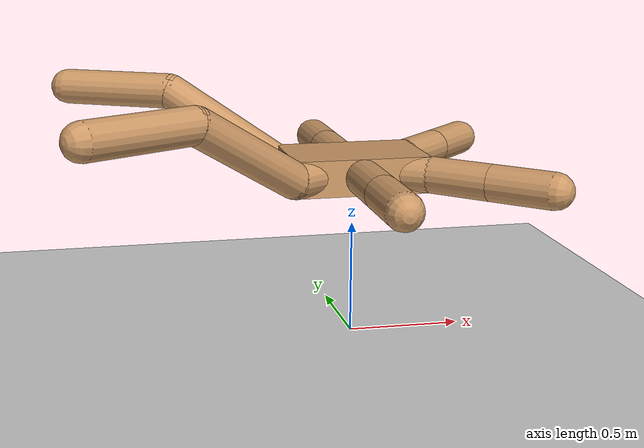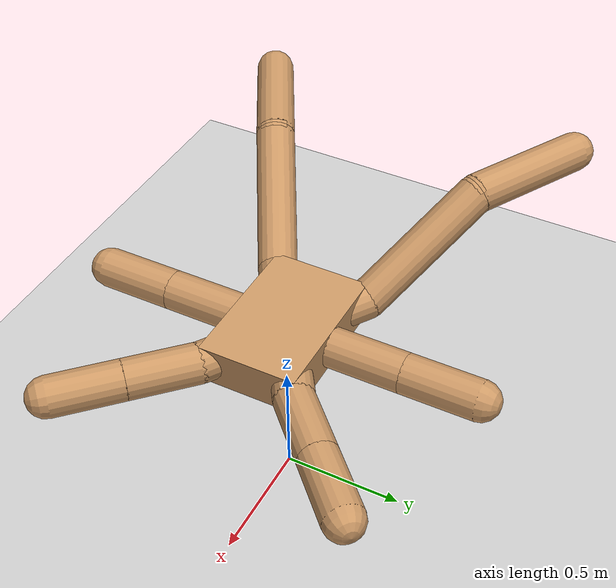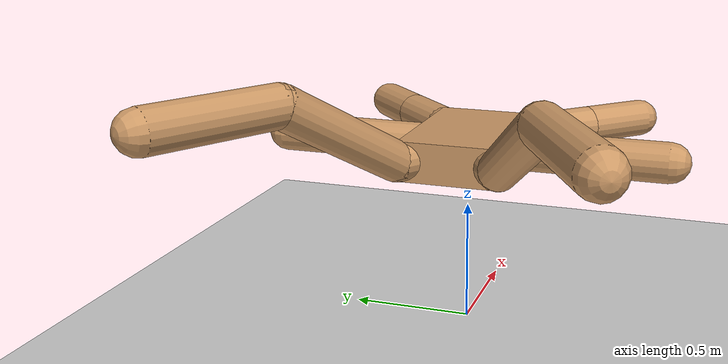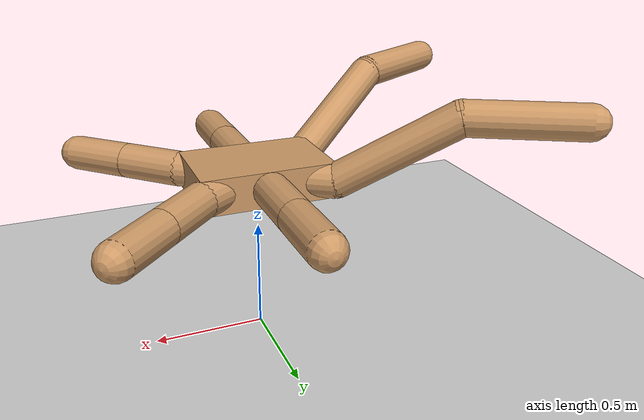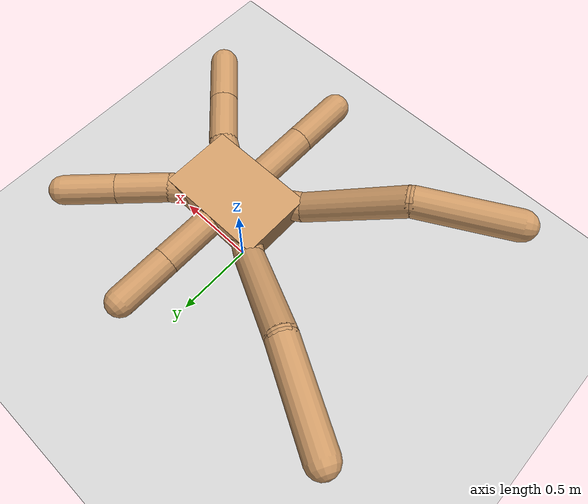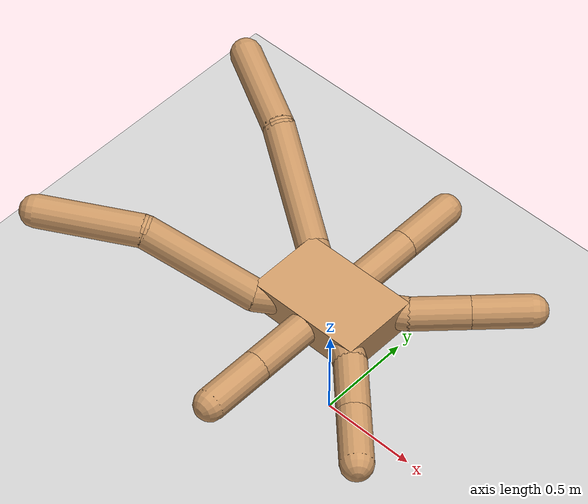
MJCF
<mujoco model="cricket">
  <compiler angle="degree" coordinate="local" inertiafromgeom="true"/>
  <option integrator="RK4" timestep="0.01"/>

  <custom>
    <numeric data="0.0 0.0 0.55 1.0 0.0 0.0 0.0 0.0 1.0 0.0 -1.0 0.0 -1.0 0.0 1.0" name="init_qpos"/>
  </custom>

  <default>
    <joint armature="1" damping="1" limited="true"/>
    <geom conaffinity="0" condim="3" density="5.0" friction="1 0.5 0.5" margin="0.01" rgba="0.8 0.6 0.4 1"/>
  </default>

  <asset>
    <texture builtin="gradient" height="100" rgb1="1 1 1" rgb2="0 0 0" type="skybox" width="100"/>
    <texture builtin="flat" height="1278" mark="cross" markrgb="1 1 1" name="texgeom" random="0.01" rgb1="0.8 0.6 0.4" rgb2="0.8 0.6 0.4" type="cube" width="127"/>
    <texture builtin="checker" height="100" name="texplane" rgb1=".25 .25 .25" rgb2=".3 .3 .3" type="2d" width="100" mark="cross" markrgb=".8 .8 .8"/>
    <material name="MatPlane" reflectance="0.5" shininess="1" specular="1" texrepeat="60 60" texture="texplane"/>
    <material name="geom" texture="texgeom" texuniform="true"/>
  </asset>

  <worldbody>
    <light cutoff="100" diffuse="1 1 1" dir="-0 0 -1.3" directional="true" exponent="1" pos="0 0 1.3" specular=".1 .1 .1"/>
    <geom conaffinity="1" condim="3" material="MatPlane" name="floor" pos="0 0 0" rgba="0.8 0.8 0.8 1" size="40 40 40" type="plane"/>
    <body name="torso" pos="0 0 0.75">
      <camera name="track" mode="trackcom" pos="0 -3 0.3" xyaxes="1 0 0 0 0 1"/>
      <geom name="torso_geom" type="box" pos="0 0 0" size=".3 .2 .08"/>
      <joint armature="0" damping="0" limited="false" margin="0.01" name="root" pos="0 0 0" type="free"/>

      <body name="LF_leg" pos="0 0 0">
        <geom fromto="0.0 0.0 0.0 0.3 0.2 0.0" name="LF_aux_geom" size="0.08" type="capsule"/>
        <body name="LF_aux" pos="0.3 0.2 0">
          <joint axis="1 -1 0" name="LF_CTr" pos="0.0 0.0 0.0" range="-10 10" type="hinge"/>
          <joint axis="0 0 -1" name="LF_hip" pos="0.0 0.0 0.0" range="-10 10" type="hinge"/>
          <geom fromto="0.0 0.0 0.0 0.2 0.2 0.0" name="LF_femur_geom" size="0.08" type="capsule"/>
          <body pos="0.2 0.2 0.0">
            <joint axis="-1 0 0" name="LF_knee" pos="0.0 0.0 0.0" range="70 90" type="hinge"/>
            <geom fromto="0.0 0.0 0.0 0.2 0.2 0.0" name="LF_tibia_geom" size="0.08" type="capsule"/>
          </body>
        </body>
      </body>

      <body name="RF_leg" pos="0 0 0">
        <geom fromto="0.0 0.0 0.0 0.3 -0.2 0.0" name="RF_aux_geom" size="0.08" type="capsule"/>
        <body name="RF_aux" pos="0.3 -0.2 0">
          <joint axis="-1 -1 0" name="RF_CTr" pos="0.0 0.0 0.0" range="-10 10" type="hinge"/>
          <joint axis="0 0 1" name="RF_hip" pos="0.0 0.0 0.0" range="-10 10" type="hinge"/>
          <geom fromto="0.0 0.0 0.0 0.2 -0.2 0.0" name="RF_femur_geom" size="0.08" type="capsule"/>
          <body pos="0.2 -0.2 0.0">
            <joint axis="1 0 0" name="RF_knee" pos="0.0 0.0 0.0" range="70 90" type="hinge"/>
            <geom fromto="0.0 0.0 0.0 0.2 -0.2 0.0" name="RF_tibia_geom" size="0.08" type="capsule"/>
          </body>
        </body>
      </body>

      <body name="LM_leg" pos="0 0 0">
        <geom fromto="0.0 0.0 0.0 0.0 0.2 0.0" name="LM_aux_geom" size="0.08" type="capsule"/>
        <body name="LM_aux" pos="0.0 0.2 0">
          <joint axis="1 0 0" name="LM_CTr" pos="0.0 0.0 0.0" range="-10 20" type="hinge"/>
          <joint axis="0 0 1" name="LM_hip" pos="0.0 0.0 0.0" range="-30 30" type="hinge"/>
          <geom fromto="0.0 0.0 0.0 0.0 0.3 0.0" name="LM_femur_geom" size="0.08" type="capsule"/>
          <body pos="0.0 0.3 0.0">
            <joint axis="-1 0 0" name="LM_knee" pos="0.0 0.0 0.0" range="70 80" type="hinge"/>
            <geom fromto="0.0 0.0 0.0 0.0 0.3 0.0" name="LM_tibia_geom" size="0.08" type="capsule"/>
          </body>
        </body>
      </body>

      <body name="RM_leg" pos="0 0 0">
        <geom fromto="0.0 0.0 0.0 0.0 -0.2 0.0" name="RM_aux_geom" size="0.08" type="capsule"/>
        <body name="RM_aux" pos="0.0 -0.2 0">
          <joint axis="-1 0 0" name="RM_CTr" pos="0.0 0.0 0.0" range="-10 20" type="hinge"/>
          <joint axis="0 0 1" name="RM_hip" pos="0.0 0.0 0.0" range="-30 30" type="hinge"/>
          <geom fromto="0.0 0.0 0.0 0.0 -0.3 0.0" name="RM_femur_geom" size="0.08" type="capsule"/>
          <body pos="0.0 -0.3 0.0">
            <joint axis="1 0 0" name="RM_knee" pos="0.0 0.0 0.0" range="70 80" type="hinge"/>
            <geom fromto="0.0 0.0 0.0 0.0 -0.3 0.0" name="RM_tibia_geom" size="0.08" type="capsule"/>
          </body>
        </body>
      </body>

      <body name="LH_leg" pos="0 0 0">
        <geom fromto="0.0 0.0 0.0 -0.3 0.2 0.0" name="LH_aux_geom" size="0.08" type="capsule"/>
        <body name="LH_aux" pos="-0.3 0.2 0">
          <joint axis="3 5 0" name="LH_CTr" pos="0.0 0.0 0.0" range="-10 0" type="hinge"/>
          <joint axis="0 0 1" name="LH_hip" pos="0.0 0.0 0.0" range="0 10" type="hinge"/>
          <geom fromto="0.0 0.0 0.0 -0.45 0.25 0.3" name="LH_femur_geom" size="0.08" type="capsule"/>
          <body pos="-0.45 0.25 0.3">
            <joint axis="-1 0 0" name="LH_knee" pos="0.0 0.0 0.0" range="70 150" type="hinge"/>
            <geom fromto="0.0 0.0 0.0 -0.45 0.25 0.0" name="LH_tibia_geom" size="0.08" type="capsule"/>
          </body>
        </body>
      </body>

      <body name="RH_leg" pos="0 0 0">
        <geom fromto="0.0 0.0 0.0 -0.3 -0.2 0.0" name="RH_aux_geom" size="0.08" type="capsule"/>
        <body name="RH_aux" pos="-0.3 -0.2 0">
          <joint axis="-3 5 0" name="RH_CTr" pos="0.0 0.0 0.0" range="-10 0" type="hinge"/>
          <joint axis="0 0 -1" name="RH_hip" pos="0.0 0.0 0.0" range="0 10" type="hinge"/>
          <geom fromto="0.0 0.0 0.0 -0.45 -0.25 0.3" name="RH_femur_geom" size="0.08" type="capsule"/>
          <body pos="-0.45 -0.25 0.3">
            <joint axis="1 0 0" name="RH_knee" pos="0.0 0.0 0.0" range="70 150" type="hinge"/>
            <geom fromto="0.0 0.0 0.0 -0.45 -0.25 0.0" name="RH_tibia_geom" size="0.08" type="capsule"/>
          </body>
        </body>
      </body>

    </body>
  </worldbody>

  <actuator>
    <motor ctrllimited="true" ctrlrange="-1.0 1.0" joint="LF_hip" gear="150"/>
    <motor ctrllimited="true" ctrlrange="-1.0 1.0" joint="LF_knee" gear="150"/>
    <motor ctrllimited="true" ctrlrange="-1.0 1.0" joint="RF_hip" gear="150"/>
    <motor ctrllimited="true" ctrlrange="-1.0 1.0" joint="RF_knee" gear="150"/>
    <motor ctrllimited="true" ctrlrange="-1.0 1.0" joint="LM_hip" gear="150"/>
    <motor ctrllimited="true" ctrlrange="-1.0 1.0" joint="LM_knee" gear="150"/>
    <motor ctrllimited="true" ctrlrange="-1.0 1.0" joint="RM_hip" gear="150"/>
    <motor ctrllimited="true" ctrlrange="-1.0 1.0" joint="RM_knee" gear="150"/>
    <motor ctrllimited="true" ctrlrange="-1.0 1.0" joint="LH_hip" gear="150"/>
    <motor ctrllimited="true" ctrlrange="-1.0 1.0" joint="LH_knee" gear="150"/>
    <motor ctrllimited="true" ctrlrange="-1.0 1.0" joint="RH_hip" gear="150"/>
    <motor ctrllimited="true" ctrlrange="-1.0 1.0" joint="RH_knee" gear="150"/>
    <motor ctrllimited="true" ctrlrange="-1.0 1.0" joint="LH_CTr" gear="150"/>
    <motor ctrllimited="true" ctrlrange="-1.0 1.0" joint="RH_CTr" gear="150"/>
    <motor ctrllimited="true" ctrlrange="-1.0 1.0" joint="LM_CTr" gear="150"/>
    <motor ctrllimited="true" ctrlrange="-1.0 1.0" joint="RM_CTr" gear="150"/>
    <motor ctrllimited="true" ctrlrange="-1.0 1.0" joint="LF_CTr" gear="150"/>
    <motor ctrllimited="true" ctrlrange="-1.0 1.0" joint="RF_CTr" gear="150"/>
  </actuator>
</mujoco>
